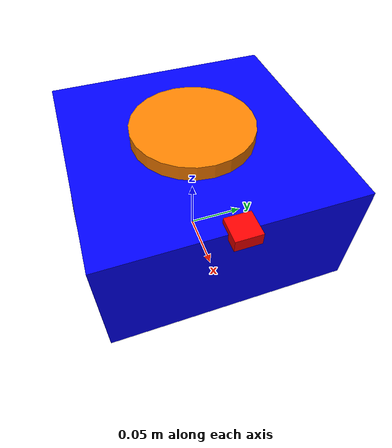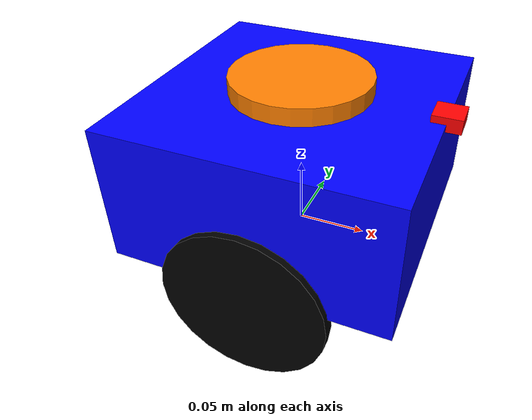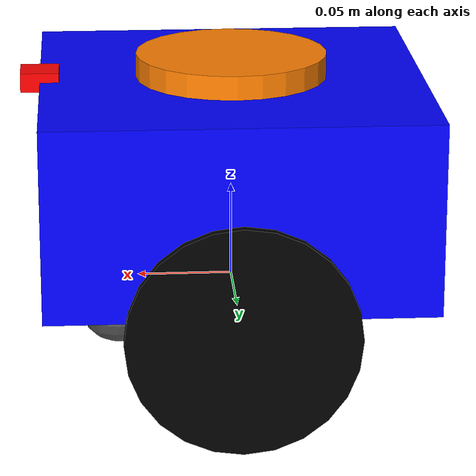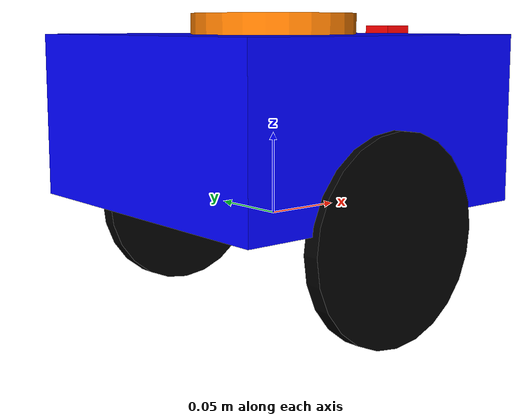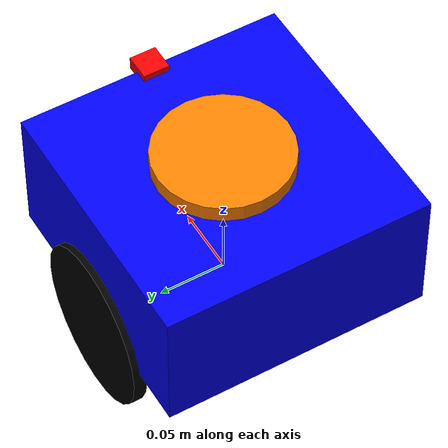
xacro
<?xml version="1.0"?>
<robot xmlns:xacro="http://ros.org/wiki/xacro" name="my_bot">

  <!-- ────────────  Global constants based on engineering drawing ──────────── -->
  <xacro:property name="wheel_radius" value="0.06"/>  <!-- 120mm diameter / 2 -->
  <xacro:property name="wheel_width"  value="0.01"/>  <!-- Estimated from diagram -->
  <xacro:property name="wheel_base"   value="0.2"/>   <!-- 200mm width -->
  <xacro:property name="base_length"  value="0.2"/>   <!-- 200mm length -->
  <xacro:property name="base_width"   value="0.2"/>   <!-- 200mm width -->
  <xacro:property name="base_height"  value="0.1"/>   <!-- 100mm height -->
  <xacro:property name="caster_radius" value="0.021"/> <!-- R21 in diagram -->

  <!-- ────────────  Materials  ──────────── -->
  <material name="Black"><color rgba="0 0 0 1.0"/></material>
  <material name="Blue"><color  rgba="0 0 1 1.0"/></material>
  <material name="Gray"><color  rgba="0.4 0.4 0.4 1.0"/></material>
  <material name="Red"><color   rgba="1 0 0 1.0"/></material>
  <material name="White"><color rgba="1 1 1 1.0"/></material>
  <material name="Orange"><color rgba="1 0.5 0 1.0"/></material>
  <material name="Green"><color rgba="0 1 0 1.0"/></material>

  <!-- ────────────  Dummy root to satisfy KDL  ──────────── -->
  <link name="root_link"/>
  <joint name="root_to_base" type="fixed">
    <parent link="root_link"/>
    <child  link="base_link"/>
  </joint>

  <!-- ────────────  Base chassis  ──────────── -->
  <link name="base_link">
    <visual>
      <!-- Offset base visual to raise the robot so wheels touch ground -->
      <origin xyz="0 0 ${wheel_radius}" rpy="0 0 0"/>
      <geometry><box size="${base_length} ${base_width} ${base_height}"/></geometry>
      <material name="Blue"/>
    </visual>
    <collision>
      <origin xyz="0 0 ${wheel_radius}" rpy="0 0 0"/>
      <geometry><box size="${base_length} ${base_width} ${base_height}"/></geometry>
    </collision>
    <inertial>
      <mass value="5.0"/>
      <origin xyz="0 0 ${wheel_radius}" rpy="0 0 0"/>
      <inertia
        ixx="0.1" ixy="0.0" ixz="0.0"
        iyy="0.1" iyz="0.0"
        izz="0.1"/>
    </inertial>
  </link>

  <!-- Base link gazebo material -->
  <gazebo reference="base_link">
    <material>Gazebo/Blue</material>
    <mu1>0.5</mu1>
    <mu2>0.5</mu2>
    <kp>1000000.0</kp>
    <kd>100.0</kd>
  </gazebo>

  <!-- ────────────  Wheels - positioned per diagram ──────────── -->
  <link name="wheel_left_link">
    <visual>
      <origin xyz="0 0 0" rpy="${pi/2} 0 0"/>
      <geometry><cylinder radius="${wheel_radius}" length="${wheel_width}"/></geometry>
      <material name="Black"/>
    </visual>
    <collision>
      <origin xyz="0 0 0" rpy="${pi/2} 0 0"/>
      <geometry><cylinder radius="${wheel_radius}" length="${wheel_width}"/></geometry>
    </collision>
    <inertial>
      <mass value="1.0"/>
      <origin xyz="0 0 0" rpy="${pi/2} 0 0"/>
      <inertia
        ixx="0.01" ixy="0.0" ixz="0.0"
        iyy="0.01" iyz="0.0"
        izz="0.01"/>
    </inertial>
  </link>
  <joint name="wheel_left_joint" type="continuous">
    <parent link="base_link"/>
    <child  link="wheel_left_link"/>
    <!-- Positioned on side of robot, centered vertically -->
    <origin xyz="0 ${wheel_base/2} 0" rpy="0 0 0"/>
    <axis xyz="0 1 0"/>
  </joint>

  <!-- Left wheel gazebo material -->
  <gazebo reference="wheel_left_link">
    <material>Gazebo/Black</material>
    <mu1>1.0</mu1>
    <mu2>1.0</mu2>
    <kp>1000000.0</kp>
    <kd>100.0</kd>
  </gazebo>

  <link name="wheel_right_link">
    <visual>
      <origin xyz="0 0 0" rpy="${pi/2} 0 0"/>
      <geometry><cylinder radius="${wheel_radius}" length="${wheel_width}"/></geometry>
      <material name="Black"/>
    </visual>
    <collision>
      <origin xyz="0 0 0" rpy="${pi/2} 0 0"/>
      <geometry><cylinder radius="${wheel_radius}" length="${wheel_width}"/></geometry>
    </collision>
    <inertial>
      <mass value="1.0"/>
      <origin xyz="0 0 0" rpy="${pi/2} 0 0"/>
      <inertia
        ixx="0.01" ixy="0.0" ixz="0.0"
        iyy="0.01" iyz="0.0"
        izz="0.01"/>
    </inertial>
  </link>
  <joint name="wheel_right_joint" type="continuous">
    <parent link="base_link"/>
    <child  link="wheel_right_link"/>
    <!-- Positioned on side of robot, centered vertically -->
    <origin xyz="0 -${wheel_base/2} 0" rpy="0 0 0"/>
    <axis xyz="0 1 0"/>
  </joint>

  <!-- Right wheel gazebo material -->
  <gazebo reference="wheel_right_link">
    <material>Gazebo/Black</material>
    <mu1>1.0</mu1>
    <mu2>1.0</mu2>
    <kp>1000000.0</kp>
    <kd>100.0</kd>
  </gazebo>

  <!-- ────────────  Passive caster positioned per drawing ──────────── -->
  <link name="caster_link">
    <visual>
      <geometry><sphere radius="${caster_radius}"/></geometry>
      <material name="Gray"/>
    </visual>
    <collision>
      <geometry><sphere radius="${caster_radius}"/></geometry>
    </collision>
    <inertial>
      <mass value="0.5"/>
      <origin xyz="0 0 0" rpy="0 0 0"/>
      <inertia
        ixx="0.001" ixy="0.0" ixz="0.0"
        iyy="0.001" iyz="0.0"
        izz="0.001"/>
    </inertial>
  </link>
  <joint name="caster_joint" type="fixed">
    <parent link="base_link"/>
    <child  link="caster_link"/>
    <!-- Position the caster at the front as shown in diagram -->
    <origin xyz="${base_length/2 - 0.039} 0 -${caster_radius - 0.005}" rpy="0 0 0"/>
  </joint>

  <!-- Caster gazebo material -->
  <gazebo reference="caster_link">
    <material>Gazebo/Gray</material>
    <mu1>0.01</mu1>
    <mu2>0.01</mu2>
    <kp>1000000.0</kp>
    <kd>100.0</kd>
  </gazebo>

  <!-- ────────────  LIDAR  ──────────── -->
  <link name="lidar_link">
    <visual>
      <geometry><cylinder radius="0.05" length="0.025"/></geometry>
      <material name="Orange"/>
    </visual>
    <collision>
      <geometry><cylinder radius="0.05" length="0.025"/></geometry>
    </collision>
    <inertial>
      <mass value="0.1"/>
      <origin xyz="0 0 0" rpy="0 0 0"/>
      <inertia
        ixx="0.001" ixy="0.0" ixz="0.0"
        iyy="0.001" iyz="0.0"
        izz="0.001"/>
    </inertial>
  </link>
  <joint name="lidar_joint" type="fixed">
    <parent link="base_link"/>
    <child  link="lidar_link"/>
    <origin xyz="0.0 0.0 ${wheel_radius + 0.05}" rpy="0 0 0"/>
  </joint>

  <!-- Lidar gazebo material -->
  <gazebo reference="lidar_link">
    <material>Gazebo/Orange</material>
  </gazebo>

  <!-- ────────────  RGB Camera  ──────────── -->
  <link name="camera_link">
    <visual>
      <geometry><box size="0.02 0.02 0.01"/></geometry>
      <material name="Red"/>
    </visual>
    <collision>
      <geometry><box size="0.02 0.02 0.01"/></geometry>
    </collision>
    <inertial>
      <mass value="0.01"/>
      <origin xyz="0.0 0.0 0.0" rpy="0 0 0"/>
      <inertia
        ixx="0.000001" ixy="0.0" ixz="0.0"
        iyy="0.000001" iyz="0.0"
        izz="0.000001"/>
    </inertial>
  </link>
  <joint name="camera_joint" type="fixed">
    <parent link="base_link"/>
    <child  link="camera_link"/>
    <origin xyz="${base_length/2} 0.0 ${wheel_radius + base_height/2}" rpy="0 0 0"/>
  </joint>

  <!-- Camera gazebo material -->
  <gazebo reference="camera_link">
    <material>Gazebo/Red</material>
  </gazebo>

  <!-- Gazebo plugin for ROS2 control -->
  <gazebo>
    <plugin filename="libignition-gazebo-diff-drive-system.so" name="ignition::gazebo::systems::DiffDrive">
      <left_joint>wheel_left_joint</left_joint>
      <right_joint>wheel_right_joint</right_joint>
      <wheel_separation>${wheel_base}</wheel_separation>
      <wheel_radius>${wheel_radius}</wheel_radius>
      <odom_topic>odom</odom_topic>
      <max_linear_acceleration>1</max_linear_acceleration>
      <max_angular_acceleration>2</max_angular_acceleration>
      <min_linear_velocity>-1</min_linear_velocity>
      <max_linear_velocity>1</max_linear_velocity>
      <min_angular_velocity>-2</min_angular_velocity>
      <max_angular_velocity>2</max_angular_velocity>
    </plugin>
  </gazebo>

</robot>
